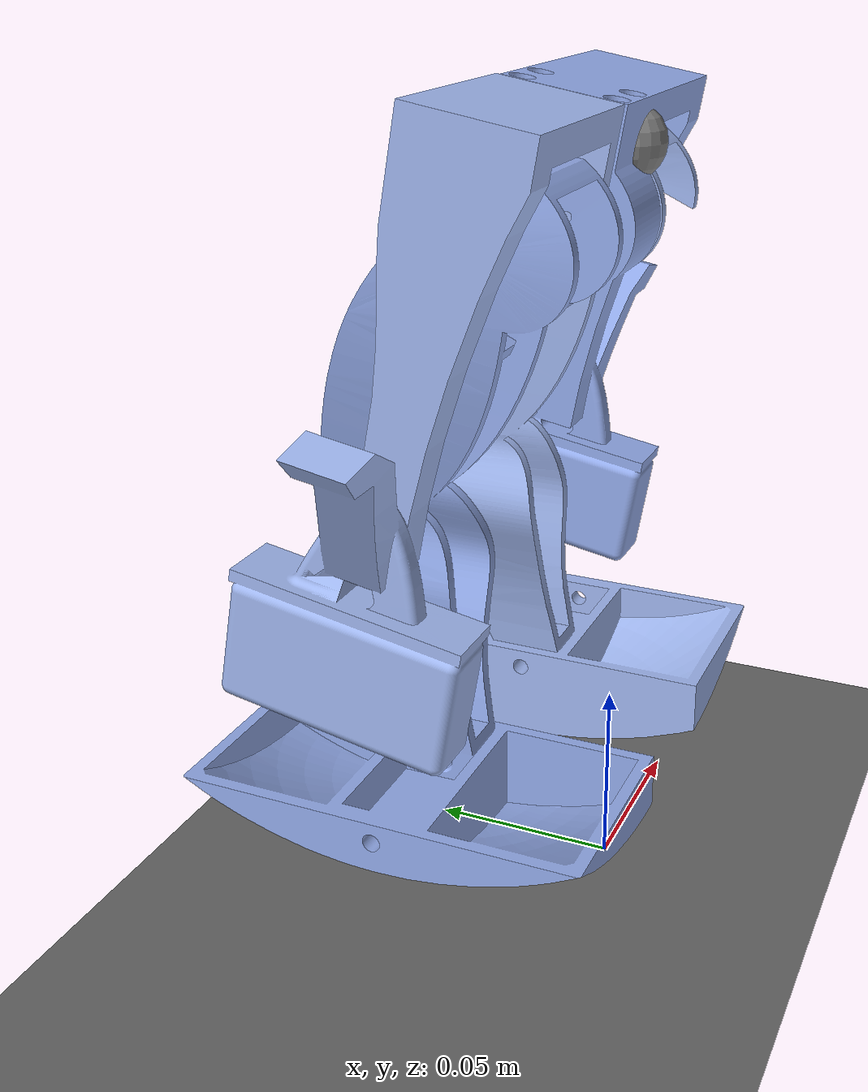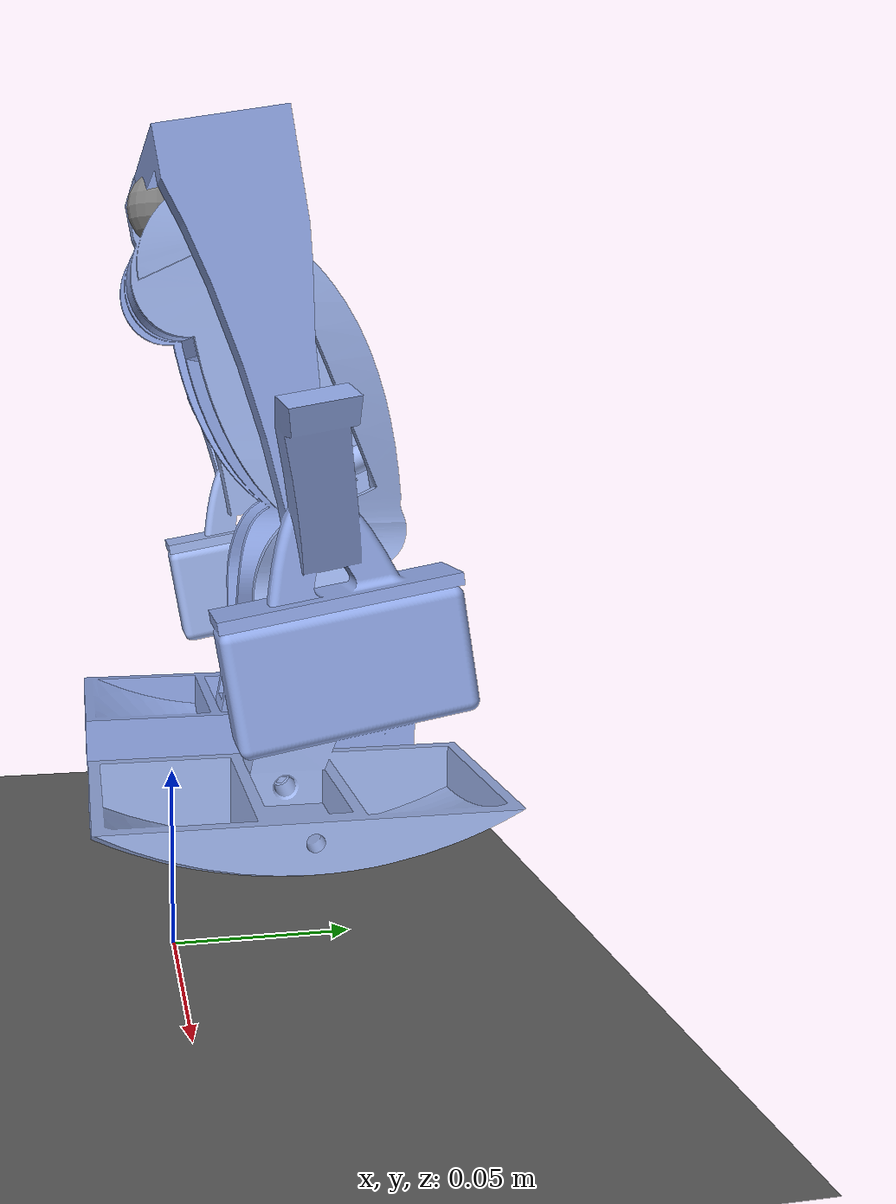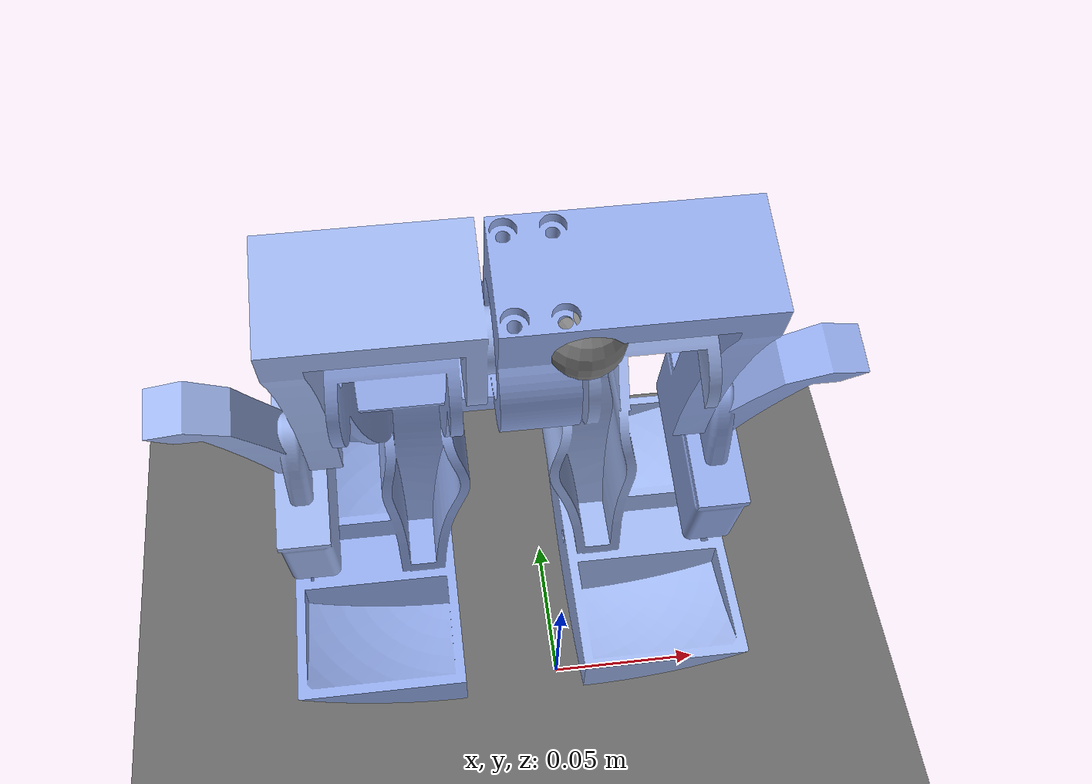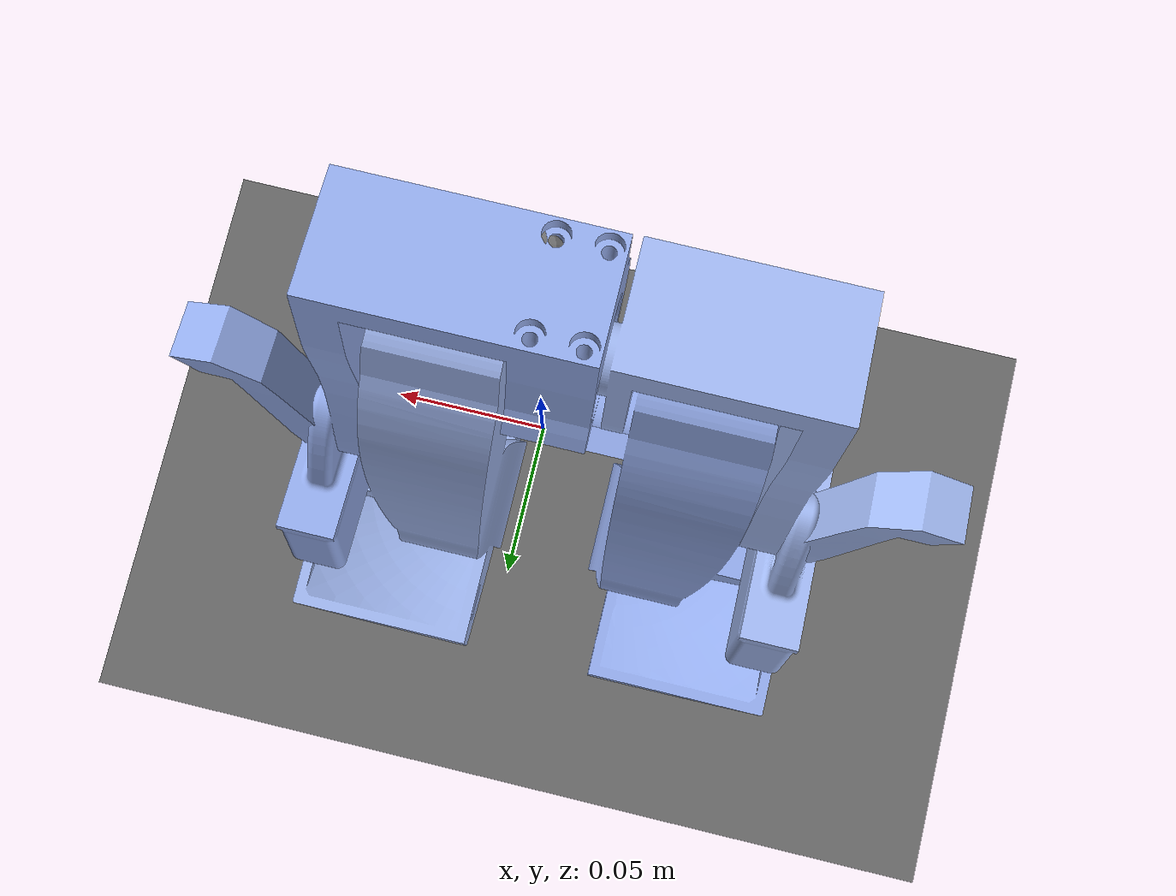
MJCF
<mujoco model="onshape">
  <option iterations="50" timestep="0.001" solver="PGS" gravity="0 0 -9.81" />

  <compiler angle="radian" meshdir="meshes" eulerseq="zyx" autolimits="true" />

  <default>
    <joint limited="true" damping="0.01" armature="0.01" frictionloss="0.01" />
    <geom condim="4" contype="1" conaffinity="15" friction="0.9 0.2 0.2" solref="0.001 2" />
    <motor ctrllimited="true" />
    <equality solref="0.001 2" />
    <position kp="35" kv="1.9" ctrlrange="-1.6 1.6" />
    <default class="visualgeom">
      <geom material="visualgeom" condim="1" contype="0" conaffinity="0" />
    </default>
  </default>

  <asset>
    <mesh name="right_leg_collision" file="right_leg_collision.stl" />
    <mesh name="left_leg_collision" file="left_leg_collision.stl" />
    <texture name="texplane" type="2d" builtin="checker" rgb1=".0 .0 .0" rgb2=".8 .8 .8" width="100"
      height="100" />
    <material name="matplane" reflectance="0." texture="texplane" texrepeat="1 1" texuniform="true" />
    <material name="visualgeom" rgba="0.5 0.9 0.2 1" />
  </asset>

  <worldbody>
    <light directional="true" diffuse="0.4 0.4 0.4" specular="0.1 0.1 0.1" pos="0 0 5.0"
      dir="0 0 -1" castshadow="false" />
    <light directional="true" diffuse="0.6 0.6 0.6" specular="0.2 0.2 0.2" pos="0 0 4" dir="0 0 -1" />
    <geom name="ground" type="plane" pos="0 0 0" size="100 100 0.001" quat="1 0 0 0"
      material="matplane" condim="3" conaffinity="15" />
    <camera name="fixed" pos="0 -3.0 0.5" xyaxes="1 0 0 0 0 1" />
    <camera name="track" mode="trackcom" pos="0 -3.0 0.5" xyaxes="1 0 0 0 0 1" />
    <body name="root" pos="0 0 0.2" quat="1 0 0 0">
      <freejoint name="root" />
      <site name="imu" size="0.01" pos="0 0 0" />
      <geom type="mesh" rgba="0.623813 0.71154 0.933089 1" mesh="right_leg_collision" contype="1"
        conaffinity="0" density="0" group="1" class="visualgeom" />
      <geom type="mesh" rgba="0.623813 0.71154 0.933089 1" mesh="right_leg_collision" />
      <body name="left_leg" pos="-0.0208226 0.0139365 -0.0162078" quat="0.5 -0.5 -0.5 0.5">
        <inertial pos="0.015831 0.0865829 -0.0193168" quat="0.429494 0.898507 -0.0880727 0.0215063"
          mass="0.413951" diaginertia="0.00218976 0.00159507 0.000895587" />
        <joint name="hip" pos="0 0 0" axis="0 0 1" range="-1.5708 1.5708" actuatorfrcrange="-1 1" />
        <geom type="mesh" rgba="0.576017 0.668568 0.916262 1" mesh="left_leg_collision" contype="1"
          conaffinity="0" density="0" group="1" class="visualgeom" />
        <geom type="mesh" rgba="0.576017 0.668568 0.916262 1" mesh="left_leg_collision" />
      </body>
    </body>
  </worldbody>

  <actuator>
    <position name="hip_joint_act" joint="hip" ctrlrange="-1.6 1.6" />
  </actuator>

  <sensor>
    <actuatorpos name="hip_p" actuator="hip_joint_act" />
    <actuatorvel name="hip_v" actuator="hip_joint_act" />
    <actuatorfrc name="hip_f" actuator="hip_joint_act" noise="0.001" />
    <framequat name="orientation" objtype="site" noise="0.001" objname="imu" />
    <gyro name="angular-velocity" site="imu" noise="0.005" cutoff="34.9" />
  </sensor>
</mujoco>
